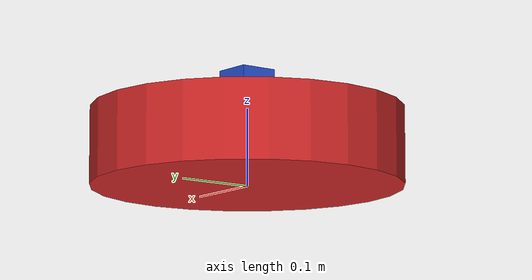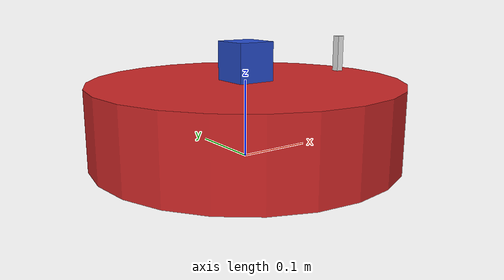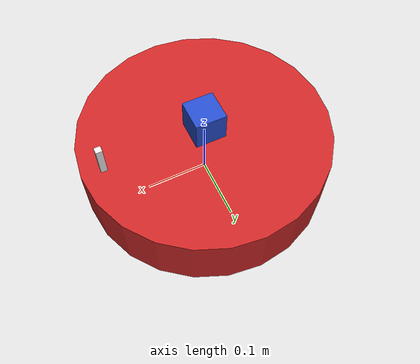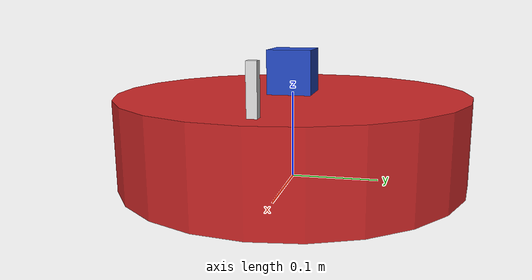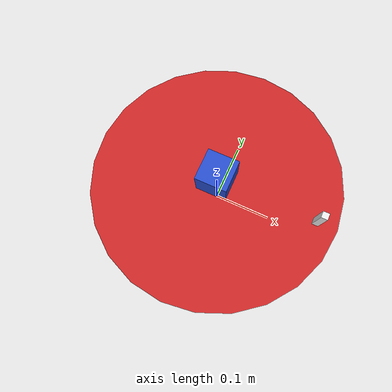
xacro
<?xml version="1.0"?>
<robot xmlns:xacro="http://www.ros.org/wiki/xacro" name="round_object">
  <xacro:include filename="$(find idas_navigation)/urdf/material.xacro"/>
  <xacro:include filename="$(find idas_navigation)/urdf/snippets.xacro"/>

  <!--============= CONSTANTS =============-->
  <xacro:property name="robot_ns" value="round_object"/>
  <xacro:property name="frame_height" value="0.1"/>
  <xacro:property name="frame_radius" value="0.2"/>
  <xacro:property name="frame_mass" value="1"/>
  <xacro:property name="sensor_size" value="0.05"/>

  <!--============= LINKS =============-->
  <link name="base_link">
    <xacro:default_cylinder length="${frame_height}"
                            radius="${frame_radius}"
                            color="red" mass="${frame_mass}"
                            x="0" y="0" z="${frame_height/2}"/>
  </link>

  <link name="sensor_link">
    <xacro:default_box length="${sensor_size}" width="${sensor_size}"
                       height="${sensor_size}" color="blue" mass="0.02"/>
  </link>

  <link name="orientation_link">
    <xacro:default_box length="0.01" width="0.01" height="0.05" color="white"
                       mass="0.01"/>
  </link>

  <!--============= JOINTS =============-->
  <joint name="sensor_joint" type="fixed">
    <origin xyz="0 0 ${frame_height+sensor_size/2}"/>
    <parent link="base_link"/>
    <child link="sensor_link"/>
  </joint>

  <joint name="orientation_joint" type="fixed">
    <origin xyz="${frame_radius-0.035} 0 ${0.025+frame_height}"/>
    <parent link="base_link"/>
    <child link="orientation_link"/>
  </joint>
  <!--========================== GAZEBO ==========================-->
  <!--============= LINKS =============-->
  <gazebo reference="base_link">
    <material>Gazebo/Red</material>
    <pose>0 0 0 0 0 0</pose>
    <kinematic>false</kinematic>
    <mu1>0</mu1>
    <mu2>0</mu2>
  </gazebo>

  <gazebo reference="sensor_link" kinematic="true">
    <material>Gazebo/Blue</material>
    <!-- sensors -->
    <xacro:lidar_sensor/>
    <xacro:imu/>
  </gazebo>

  <gazebo>
    <plugin name="object_controller" filename="libgazebo_ros_planar_move.so">
      <commandTopic>cmd_vel</commandTopic>
      <odometryTopic>odom_planar</odometryTopic>
      <odometryFrame>odom</odometryFrame>
      <odometryRate>50.0</odometryRate>
      <robotBaseFrame>base_link</robotBaseFrame>
      <cmdTimeout>-1</cmdTimeout>
    </plugin>
  </gazebo>

  <gazebo>
  <plugin name="ground_truth" filename="libgazebo_ros_p3d.so">
    <frameName>map</frameName>
    <bodyName>base_link</bodyName>
    <topicName>odom</topicName>
    <updateRate>50.0</updateRate>
  </plugin>
</gazebo>

  <gazebo reference='sensor_joint'>
    <preserveFixedJoint>true</preserveFixedJoint>
  </gazebo>
</robot>

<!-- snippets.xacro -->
<robot xmlns:xacro="http://www.ros.org/wiki/xacro" name="snippset">
  <!--============= MACROS =============-->
  <xacro:macro name="default_base" params="x y z">
    <visual>
      <origin xyz="${x} ${y} ${z}" rpy="0 0 0"/>
    </visual>
    <collision>
      <origin xyz="${x} ${y} ${z}" rpy="0 0 0"/>
    </collision>
    <inertial>
      <origin xyz="${x} ${y} ${z}" rpy="0 0 0"/>
    </inertial>
  </xacro:macro>

  <xacro:macro name="default_cylinder" params="length radius color mass x y z">
    <visual>
      <origin xyz="${x} ${y} ${z}" rpy="0 0 0"/>
      <geometry>
        <cylinder length="${length}" radius="${radius}"/>
      </geometry>
      <material name="${color}"/>
    </visual>
    <collision>
      <origin xyz="${x} ${y} ${z}" rpy="0 0 0"/>
      <geometry>
        <cylinder length="${length/1.05}" radius="${radius/1.05}"/>
      </geometry>
    </collision>
    <inertial>
      <origin xyz="${x} ${y} ${z}" rpy="0 0 0"/>
      <mass value="${mass}"/>
      <inertia ixx="${mass*(length**2+3*radius**2)/12}"
               ixy="0" iyy="${mass*(length**2+3*radius**2)/12}"
               ixz="0" iyz="0" izz="${mass*radius**2/2}"/>
    </inertial>
  </xacro:macro>

  <xacro:macro name="default_box" params="length width height color mass">
    <visual>
      <origin xyz="0 0 0" rpy="0 0 0"/>
      <geometry>
        <box size="${length} ${width} ${height}"/>
      </geometry>
      <material name="${color}"/>
    </visual>
    <collision>
      <origin xyz="0 0 0" rpy="0 0 0"/>
      <geometry>
        <box size="${length/1.05} ${width/1.05} ${height/1.05}"/>
      </geometry>
    </collision>
    <inertial>
      <origin xyz="0 0 0" rpy="0 0 0"/>
      <mass value="${mass}"/>
      <inertia ixx="${mass*(height**2)*(width**2)/12}"
               ixy="0" iyy="${mass*(length**2)*(height**2)/12}"
               ixz="0" iyz="0" izz="${mass*(length**2)*(width**2)/12}"/>
    </inertial>
  </xacro:macro>

<!--============= SENSORS =============-->
  <xacro:macro name="lidar_sensor">
    <sensor type="ray" name="lidar_sensor">
      <pose>0 0 0 0 0 0</pose>
      <visualize>true</visualize>
      <update_rate>40</update_rate>
      <ray>
        <scan>
          <horizontal>
            <samples>720</samples>
            <resolution>1</resolution>
            <min_angle>-1.0472</min_angle>
            <max_angle>1.0472</max_angle>
          </horizontal>
        </scan>
        <range>
          <min>0.10</min>
          <max>15.0</max>
          <resolution>0.01</resolution>
        </range>
        <noise>
          <type>gaussian</type>
          <mean>0.0</mean>
          <stddev>0.01</stddev>
        </noise>
      </ray>
      <plugin name="laser" filename="libRayPlugin.so">
        <topicName>/round_object/laser/scan</topicName>
        <frameName>sensor_link</frameName>
      </plugin>
      <plugin name="ros_laser" filename="libgazebo_ros_laser.so">
        <topicName>/round_object/laser/scan</topicName>
        <frameName>sensor_link</frameName>
      </plugin>
    </sensor>
  </xacro:macro>

  <xacro:macro name="imu">
    <sensor name="imu_sensor" type="imu">
      <always_on>true</always_on>
      <update_rate>50.0</update_rate>
      <visualize>true</visualize>
      <topic>__default_topic__</topic>
      <plugin filename="libgazebo_ros_imu_sensor.so" name="imu_plugin">
        <topicName>imu</topicName>
        <bodyName>sensor_link</bodyName>
        <updateRateHZ>10.0</updateRateHZ>
        <gaussianNoise>0.0</gaussianNoise>
        <xyzOffset>0 0 0</xyzOffset>
        <rpyOffset>0 0 0</rpyOffset>
        <frameName>sensor_link</frameName>
        <initialOrientationAsReference>false</initialOrientationAsReference>
      </plugin>
      <pose>0 0 0 0 0 0</pose>
    </sensor>
  </xacro:macro>
</robot>
